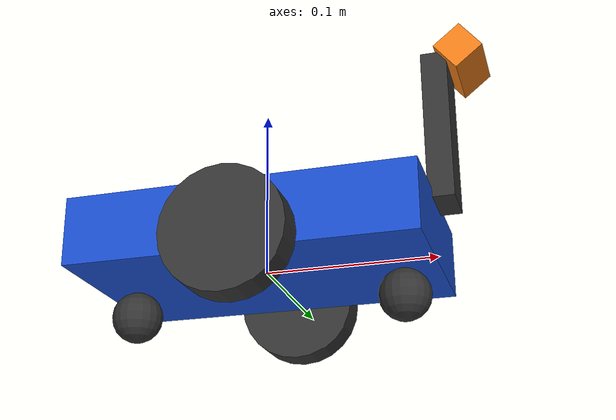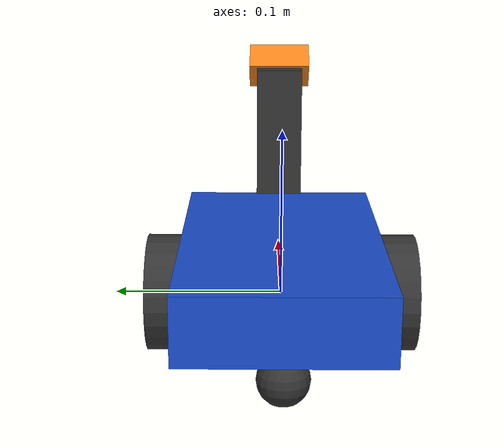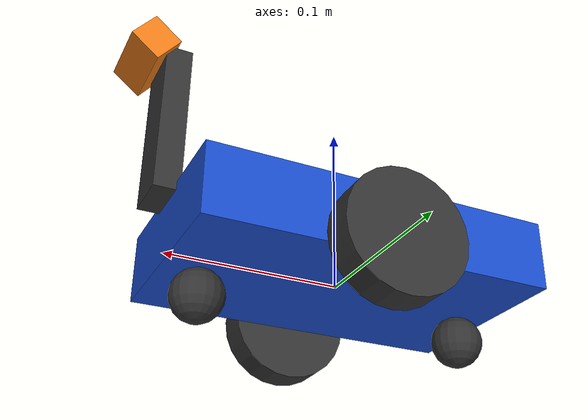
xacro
<?xml version="1.0"?>
<robot xmlns:xacro="http://www.ros.org/wiki/xacro" name="linebot">

  <!-- ===================== tunable geometry ===================== -->
  <xacro:property name="chassis_l"    value="0.20"/>
  <xacro:property name="chassis_w"    value="0.12"/>
  <xacro:property name="chassis_h"    value="0.04"/>
  <xacro:property name="chassis_mass" value="1.0"/>
  <xacro:property name="chassis_oz"   value="0.015"/>   <!-- chassis centre above axle -->

  <xacro:property name="wheel_r"    value="0.035"/>
  <xacro:property name="wheel_w"    value="0.02"/>
  <xacro:property name="wheel_mass" value="0.1"/>
  <xacro:property name="wheel_y"    value="0.07"/>       <!-- half the wheel separation -->

  <xacro:property name="caster_r"    value="0.015"/>
  <xacro:property name="caster_x"    value="0.08"/>
  <xacro:property name="caster_mass" value="0.05"/>

  <!-- camera: 0.12 m ahead of axle, 0.12 m above it, pitched 0.9 rad (~52 deg) down.
       With a 1.2 rad HFOV this sees the floor ~0.15 m to ~0.45 m ahead of the axle. -->
  <xacro:property name="cam_x"     value="0.12"/>
  <xacro:property name="cam_z"     value="0.12"/>
  <xacro:property name="cam_pitch" value="0.9"/>

  <!-- ===================== materials ===================== -->
  <material name="chassis_blue"><color rgba="0.10 0.30 0.80 1"/></material>
  <material name="wheel_grey">  <color rgba="0.20 0.20 0.20 1"/></material>
  <material name="cam_orange">  <color rgba="0.95 0.50 0.10 1"/></material>

  <!-- ===================== inertia helpers ===================== -->
  <xacro:macro name="box_inertial" params="m x y z oz:=0">
    <inertial>
      <origin xyz="0 0 ${oz}" rpy="0 0 0"/>
      <mass value="${m}"/>
      <inertia ixx="${m*(y*y+z*z)/12}" ixy="0" ixz="0"
               iyy="${m*(x*x+z*z)/12}" iyz="0" izz="${m*(x*x+y*y)/12}"/>
    </inertial>
  </xacro:macro>

  <xacro:macro name="cylinder_inertial" params="m r h">
    <inertial>
      <mass value="${m}"/>
      <inertia ixx="${m*(3*r*r+h*h)/12}" ixy="0" ixz="0"
               iyy="${m*(3*r*r+h*h)/12}" iyz="0" izz="${m*r*r/2}"/>
    </inertial>
  </xacro:macro>

  <xacro:macro name="sphere_inertial" params="m r">
    <inertial>
      <mass value="${m}"/>
      <inertia ixx="${2*m*r*r/5}" ixy="0" ixz="0" iyy="${2*m*r*r/5}" iyz="0" izz="${2*m*r*r/5}"/>
    </inertial>
  </xacro:macro>

  <!-- ===================== base ===================== -->
  <link name="base_link">
    <visual>
      <origin xyz="0 0 ${chassis_oz}"/>
      <geometry><box size="${chassis_l} ${chassis_w} ${chassis_h}"/></geometry>
      <material name="chassis_blue"/>
    </visual>
    <!-- camera mast (visual only) -->
    <visual>
      <origin xyz="${cam_x - 0.015} 0 0.075"/>
      <geometry><box size="0.015 0.03 0.09"/></geometry>
      <material name="wheel_grey"/>
    </visual>
    <collision>
      <origin xyz="0 0 ${chassis_oz}"/>
      <geometry><box size="${chassis_l} ${chassis_w} ${chassis_h}"/></geometry>
    </collision>
    <xacro:box_inertial m="${chassis_mass}" x="${chassis_l}" y="${chassis_w}" z="${chassis_h}" oz="${chassis_oz}"/>
  </link>

  <!-- ===================== wheels ===================== -->
  <!-- joint frame rotated so the link z-axis points to +y; positive rotation = forward -->
  <xacro:macro name="wheel" params="name y">
    <link name="${name}_wheel">
      <visual>
        <geometry><cylinder radius="${wheel_r}" length="${wheel_w}"/></geometry>
        <material name="wheel_grey"/>
      </visual>
      <collision>
        <geometry><cylinder radius="${wheel_r}" length="${wheel_w}"/></geometry>
      </collision>
      <xacro:cylinder_inertial m="${wheel_mass}" r="${wheel_r}" h="${wheel_w}"/>
    </link>
    <joint name="${name}_wheel_joint" type="continuous">
      <parent link="base_link"/>
      <child link="${name}_wheel"/>
      <origin xyz="0 ${y} 0" rpy="${-pi/2} 0 0"/>
      <axis xyz="0 0 1"/>
    </joint>
    <gazebo reference="${name}_wheel">
      <mu1>1.0</mu1>
      <mu2>1.0</mu2>
    </gazebo>
  </xacro:macro>

  <xacro:wheel name="left"  y="${wheel_y}"/>
  <xacro:wheel name="right" y="${-wheel_y}"/>

  <!-- ===================== casters (frictionless balls) ===================== -->
  <xacro:macro name="caster" params="name x">
    <link name="${name}_caster">
      <visual>
        <geometry><sphere radius="${caster_r}"/></geometry>
        <material name="wheel_grey"/>
      </visual>
      <collision>
        <geometry><sphere radius="${caster_r}"/></geometry>
      </collision>
      <xacro:sphere_inertial m="${caster_mass}" r="${caster_r}"/>
    </link>
    <joint name="${name}_caster_joint" type="fixed">
      <parent link="base_link"/>
      <child link="${name}_caster"/>
      <origin xyz="${x} 0 ${caster_r - wheel_r}"/>
    </joint>
    <gazebo reference="${name}_caster">
      <mu1>0.0</mu1>
      <mu2>0.0</mu2>
    </gazebo>
  </xacro:macro>

  <xacro:caster name="front" x="${caster_x}"/>
  <xacro:caster name="rear"  x="${-caster_x}"/>

  <!-- ===================== camera ===================== -->
  <link name="camera_link">
    <visual>
      <geometry><box size="0.02 0.04 0.02"/></geometry>
      <material name="cam_orange"/>
    </visual>
    <xacro:box_inertial m="0.02" x="0.02" y="0.04" z="0.02"/>
  </link>
  <joint name="camera_joint" type="fixed">
    <parent link="base_link"/>
    <child link="camera_link"/>
    <origin xyz="${cam_x} 0 ${cam_z}" rpy="0 ${cam_pitch} 0"/>
  </joint>

  <!-- ROS optical convention: z forward, x right, y down -->
  <link name="camera_optical_frame"/>
  <joint name="camera_optical_joint" type="fixed">
    <parent link="camera_link"/>
    <child link="camera_optical_frame"/>
    <origin xyz="0 0 0" rpy="${-pi/2} 0 ${-pi/2}"/>
  </joint>

  <!-- ===================== Gazebo plugins + camera sensor ===================== -->
  <xacro:include filename="$(find linebot_description)/urdf/linebot_gz.xacro"/>
  <xacro:linebot_gz left_joint="left_wheel_joint"
                    right_joint="right_wheel_joint"
                    wheel_separation="${2*wheel_y}"
                    wheel_radius="${wheel_r}"
                    camera_link="camera_link"/>
</robot>
